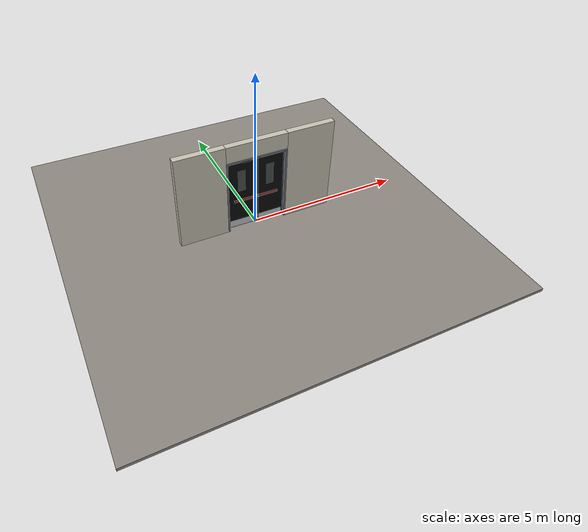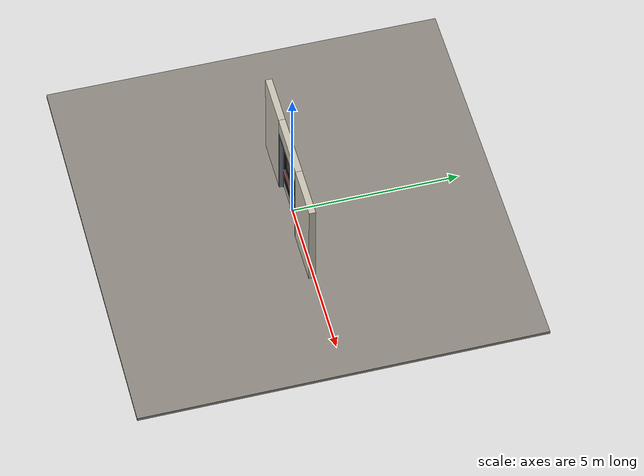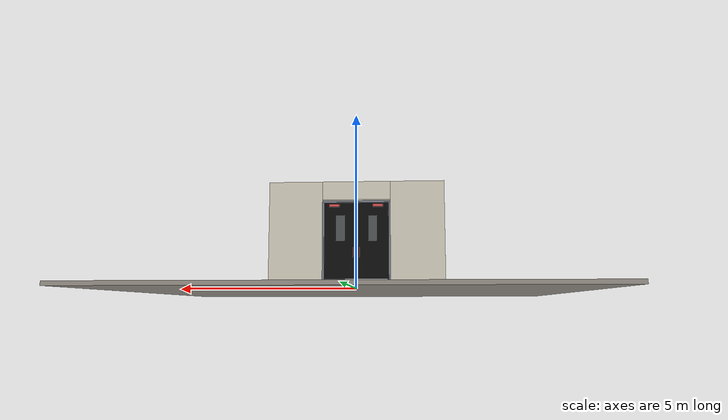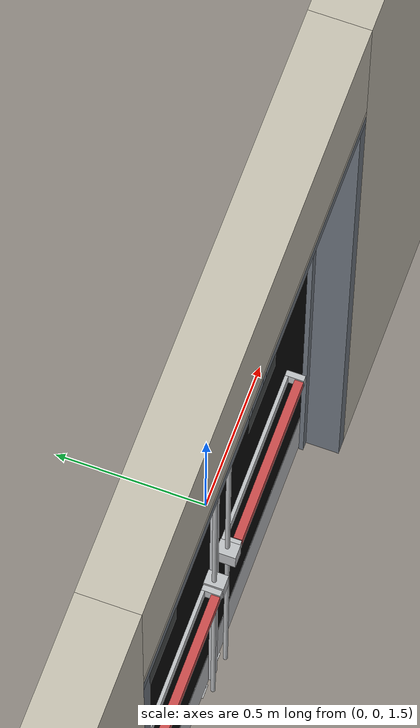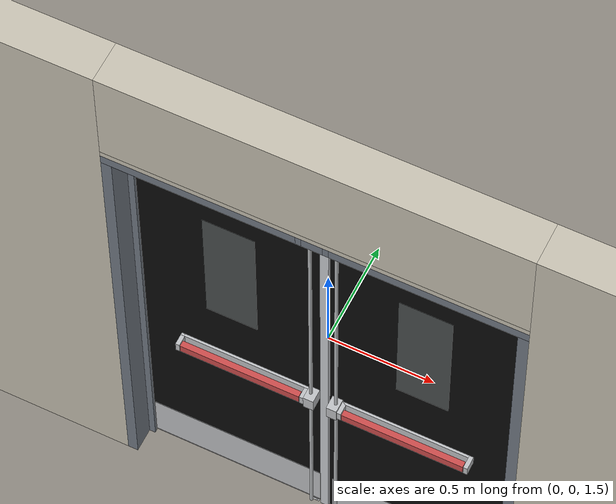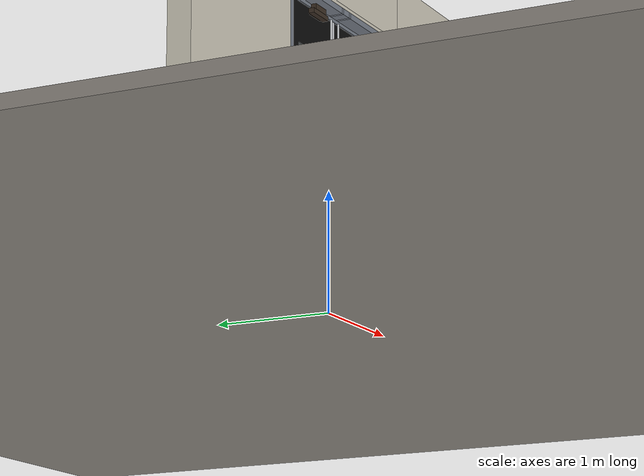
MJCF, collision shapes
<?xml version="1.0" ?>
<mujoco model="db0261_swing_double_full">
  <compiler angle="radian" meshdir="../../hardware" texturedir="../../textures" autolimits="true" inertiafromgeom="false"/>
  <option timestep="0.002" integrator="implicitfast" cone="elliptic" impratio="10" noslip_iterations="3">
    <flag multiccd="enable"/>
  </option>
  <size memory="16M"/>
  <default>
    <geom condim="4" solref="0.005 1" solimp="0.95 0.99 0.001"/>
    <joint solreflimit="0.005 1" solimplimit="0.95 0.99 0.001"/>
    <tendon solreflimit="0.005 1"/>
    <equality solref="0.002 1"/>
  </default>
  <visual>
    <headlight ambient="0.4 0.4 0.4" diffuse="0.7 0.7 0.7" specular="0.2 0.2 0.2"/>
    <quality shadowsize="4096"/>
    <map znear="0.01" zfar="60"/>
  </visual>
  <asset>
    <mesh name="closer_body_fdc4667657" file="closer_body_fdc4667657.obj"/>
    <mesh name="exit_sign_a6449bfa2c" file="exit_sign_a6449bfa2c.obj"/>
    <mesh name="hinge_e22b26c0c1" file="hinge_e22b26c0c1.obj"/>
    <mesh name="hinge_jamb_e1d088f8dc" file="hinge_jamb_e1d088f8dc.obj"/>
    <mesh name="pull_f8d79d6331" file="pull_f8d79d6331.obj"/>
    <mesh name="touchbar_pad_2729a067b4" file="touchbar_pad_2729a067b4.obj"/>
    <material name="mat_floor" rgba="0.55 0.53 0.5 1" specular="0.2" shininess="0.15" reflectance="0"/>
    <material name="mat_wall" rgba="0.78 0.76 0.7 1" specular="0.2" shininess="0.1" reflectance="0"/>
    <material name="mat_leaf_a" rgba="0.04 0.04 0.04 1" specular="0.23" shininess="0.38" reflectance="0.02"/>
    <material name="mat_glass" rgba="0.8 0.85 0.85 0.35" specular="0.2" shininess="0.9" reflectance="0.1"/>
    <material name="mat_hinge" rgba="0.65 0.66 0.68 1" specular="0.74" shininess="0.5" reflectance="0.36"/>
    <material name="mat_op_stainless" rgba="0.75 0.76 0.77 1" specular="0.8" shininess="0.65" reflectance="0.4"/>
    <material name="mat_bolt" rgba="0.75 0.76 0.77 1" specular="0.8" shininess="0.65" reflectance="0.4"/>
    <material name="mat_maglock" rgba="0.22 0.17 0.13 1" specular="0.8" shininess="0.6" reflectance="0.4"/>
    <material name="mat_closer" rgba="0.22 0.17 0.13 1" specular="0.8" shininess="0.6" reflectance="0.4"/>
    <material name="mat_kick" rgba="0.75 0.76 0.77 1" specular="0.8" shininess="0.65" reflectance="0.4"/>
    <material name="mat_exit_sign" rgba="0.85 0.1 0.1 1" specular="0.2" shininess="0.6" reflectance="0"/>
    <material name="mat_sign_bracket" rgba="0.8 0.81 0.83 1" specular="0.8" shininess="0.6" reflectance="0.4"/>
    <material name="mat_leaf_b" rgba="0.04 0.04 0.04 1" specular="0.23" shininess="0.38" reflectance="0.02"/>
    <material name="mat_frame" rgba="0.45 0.48 0.52 1" specular="0.32" shininess="0.6" reflectance="0.08"/>
    <material name="mat_astragal" rgba="0.8 0.81 0.83 1" specular="0.8" shininess="0.6" reflectance="0.4"/>
    <texture name="skybox" type="skybox" builtin="gradient" rgb1="0.6 0.7 0.85" rgb2="0.9 0.92 0.95" width="256" height="256"/>
  </asset>
  <worldbody>
    <light name="sun" pos="1.5 -2.5 4" dir="-0.3 0.5 -0.8" directional="true" diffuse="0.8 0.8 0.8" specular="0.3 0.3 0.3" castshadow="true"/>
    <light name="fill" pos="-1.5 2.5 3" dir="0.3 -0.5 -0.7" directional="true" diffuse="0.35 0.35 0.4" castshadow="false"/>
    <camera name="robot_view" pos="0 -2.980812 2.043887" xyaxes="1 0 0 0 0.26963 0.962964" fovy="52"/>
    <camera name="far_view" pos="0 2.864813 2.043887" xyaxes="-1 0 0 0 -0.26963 0.962964" fovy="52"/>
    <camera name="iso" pos="-2.221337 -2.513162 2.511538" xyaxes="0.741536 -0.670913 0 0.242917 0.268487 0.932151" fovy="46"/>
    <camera name="detail_handle" pos="0.0885 -0.703 1.296" xyaxes="0.97561 0.219512 0 -0.070934 0.315262 0.94635" fovy="38"/>
    <geom name="floor" type="box" size="6 6 0.05" pos="0 0 -0.05" material="mat_floor" group="0" contype="1" conaffinity="1" friction="0.8 0.005 0.0001" density="2400"/>
    <geom name="wall_left" type="box" size="0.76575 0.1 1.5255" pos="-1.73425 -0.058 1.5255" material="mat_wall" group="0" contype="1" conaffinity="1" friction="0.6 0.005 0.0001" density="800"/>
    <geom name="wall_right" type="box" size="0.76575 0.1 1.5255" pos="1.73425 -0.058 1.5255" material="mat_wall" group="0" contype="1" conaffinity="1" friction="0.6 0.005 0.0001" density="800"/>
    <geom name="wall_header" type="box" size="0.9685 0.1 0.26" pos="0 -0.058 2.791" material="mat_wall" group="0" contype="1" conaffinity="1" friction="0.6 0.005 0.0001" density="800"/>
    <geom name="hinge_0_jamb" type="mesh" mesh="hinge_jamb_e1d088f8dc" pos="-0.9155 0.029 0.266" quat="0 1 0 0" material="mat_hinge" group="1" contype="0" conaffinity="0" density="7850"/>
    <geom name="hinge_1_jamb" type="mesh" mesh="hinge_jamb_e1d088f8dc" pos="-0.9155 0.029 0.933" quat="0 1 0 0" material="mat_hinge" group="1" contype="0" conaffinity="0" density="7850"/>
    <geom name="hinge_2_jamb" type="mesh" mesh="hinge_jamb_e1d088f8dc" pos="-0.9155 0.029 1.6" quat="0 1 0 0" material="mat_hinge" group="1" contype="0" conaffinity="0" density="7850"/>
    <geom name="hinge_3_jamb" type="mesh" mesh="hinge_jamb_e1d088f8dc" pos="-0.9155 0.029 2.267" quat="0 1 0 0" material="mat_hinge" group="1" contype="0" conaffinity="0" density="7850"/>
    <geom name="leaf_a_bottom_strike_plate" type="box" size="0.0255 0.0255 0.00075" pos="-0.0615 0 0.00075" material="mat_bolt" group="0" contype="1" conaffinity="1" friction="0.6 0.005 0.0001" density="7850"/>
    <geom name="leaf_a_bottom_strike_p" type="box" size="0.0215 0.004 0.00575" pos="-0.0615 0.0145 0.00725" material="mat_bolt" group="0" contype="1" conaffinity="1" friction="0.6 0.005 0.0001" density="7850"/>
    <geom name="leaf_a_bottom_strike_n" type="box" size="0.0215 0.004 0.00575" pos="-0.0615 -0.0145 0.00725" material="mat_bolt" group="0" contype="1" conaffinity="1" friction="0.6 0.005 0.0001" density="7850"/>
    <geom name="leaf_a_bottom_strike_e" type="box" size="0.004 0.0215 0.00575" pos="-0.047 0 0.00725" material="mat_bolt" group="0" contype="1" conaffinity="1" friction="0.6 0.005 0.0001" density="7850"/>
    <geom name="leaf_a_maglock_body" type="box" size="0.125 0.025 0.02" pos="-0.3015 -0.057 2.386" material="mat_maglock" group="0" contype="1" conaffinity="1" friction="0.6 0.005 0.0001" density="2000"/>
    <geom name="leaf_a_maglock_bracket" type="box" size="0.09 0.025 0.0225" pos="-0.3015 -0.057 2.4285" material="mat_maglock" group="1" contype="0" conaffinity="0" density="7850"/>
    <geom name="exit_sign" type="mesh" mesh="exit_sign_a6449bfa2c" pos="0 -0.15 2.751" material="mat_exit_sign" group="2" contype="0" conaffinity="0" density="500"/>
    <geom name="hinge_0_jamb_2" type="mesh" mesh="hinge_jamb_e1d088f8dc" pos="0.9155 0.029 0.266" quat="0 0 0 1" material="mat_hinge" group="1" contype="0" conaffinity="0" density="7850"/>
    <geom name="hinge_1_jamb_2" type="mesh" mesh="hinge_jamb_e1d088f8dc" pos="0.9155 0.029 0.933" quat="0 0 0 1" material="mat_hinge" group="1" contype="0" conaffinity="0" density="7850"/>
    <geom name="hinge_2_jamb_2" type="mesh" mesh="hinge_jamb_e1d088f8dc" pos="0.9155 0.029 1.6" quat="0 0 0 1" material="mat_hinge" group="1" contype="0" conaffinity="0" density="7850"/>
    <geom name="hinge_3_jamb_2" type="mesh" mesh="hinge_jamb_e1d088f8dc" pos="0.9155 0.029 2.267" quat="0 0 0 1" material="mat_hinge" group="1" contype="0" conaffinity="0" density="7850"/>
    <geom name="leaf_b_bottom_strike_plate" type="box" size="0.0255 0.0255 0.00075" pos="0.0615 0 0.00075" material="mat_bolt" group="0" contype="1" conaffinity="1" friction="0.6 0.005 0.0001" density="7850"/>
    <geom name="leaf_b_bottom_strike_p" type="box" size="0.0215 0.004 0.00575" pos="0.0615 0.0145 0.00725" material="mat_bolt" group="0" contype="1" conaffinity="1" friction="0.6 0.005 0.0001" density="7850"/>
    <geom name="leaf_b_bottom_strike_n" type="box" size="0.0215 0.004 0.00575" pos="0.0615 -0.0145 0.00725" material="mat_bolt" group="0" contype="1" conaffinity="1" friction="0.6 0.005 0.0001" density="7850"/>
    <geom name="leaf_b_bottom_strike_e" type="box" size="0.004 0.0215 0.00575" pos="0.047 0 0.00725" material="mat_bolt" group="0" contype="1" conaffinity="1" friction="0.6 0.005 0.0001" density="7850"/>
    <geom name="jamb_l" type="box" size="0.025 0.1 1.2255" pos="-0.9435 -0.058 1.2255" material="mat_frame" group="0" contype="1" conaffinity="1" friction="0.6 0.005 0.0001" density="300"/>
    <geom name="jamb_r" type="box" size="0.025 0.1 1.2255" pos="0.9435 -0.058 1.2255" material="mat_frame" group="0" contype="1" conaffinity="1" friction="0.6 0.005 0.0001" density="300"/>
    <geom name="jamb_head_pwall_-61_n" type="box" size="0.0135 0.0735 0.025" pos="-0.0615 -0.0845 2.476" material="mat_frame" group="0" contype="1" conaffinity="1" friction="0.6 0.005 0.0001" density="300"/>
    <geom name="jamb_head_pwall_-61_p" type="box" size="0.0135 0.0155 0.025" pos="-0.0615 0.0265 2.476" material="mat_frame" group="0" contype="1" conaffinity="1" friction="0.6 0.005 0.0001" density="300"/>
    <geom name="jamb_head_pback_-61" type="box" size="0.0135 0.011 0.0135" pos="-0.0615 0 2.4875" material="mat_frame" group="0" contype="1" conaffinity="1" friction="0.6 0.005 0.0001" density="300"/>
    <geom name="jamb_head_pwall_61_n" type="box" size="0.0135 0.0735 0.025" pos="0.0615 -0.0845 2.476" material="mat_frame" group="0" contype="1" conaffinity="1" friction="0.6 0.005 0.0001" density="300"/>
    <geom name="jamb_head_pwall_61_p" type="box" size="0.0135 0.0155 0.025" pos="0.0615 0.0265 2.476" material="mat_frame" group="0" contype="1" conaffinity="1" friction="0.6 0.005 0.0001" density="300"/>
    <geom name="jamb_head_pback_61" type="box" size="0.0135 0.011 0.0135" pos="0.0615 0 2.4875" material="mat_frame" group="0" contype="1" conaffinity="1" friction="0.6 0.005 0.0001" density="300"/>
    <geom name="jamb_head_0" type="box" size="0.44675 0.1 0.025" pos="-0.52175 -0.058 2.476" material="mat_frame" group="0" contype="1" conaffinity="1" friction="0.6 0.005 0.0001" density="300"/>
    <geom name="jamb_head_1" type="box" size="0.048 0.1 0.025" pos="0 -0.058 2.476" material="mat_frame" group="0" contype="1" conaffinity="1" friction="0.6 0.005 0.0001" density="300"/>
    <geom name="jamb_head_2" type="box" size="0.44675 0.1 0.025" pos="0.52175 -0.058 2.476" material="mat_frame" group="0" contype="1" conaffinity="1" friction="0.6 0.005 0.0001" density="300"/>
    <geom name="head_stud" type="box" size="0.9685 0.1 0.015" pos="0 -0.058 2.516" material="mat_wall" group="0" contype="1" conaffinity="1" friction="0.6 0.005 0.0001" density="500"/>
    <geom name="stop_l" type="box" size="0.015 0.008 1.2255" pos="-0.9035 -0.0305 1.2255" material="mat_frame" group="0" contype="1" conaffinity="1" friction="0.6 0.005 0.0001" density="300"/>
    <geom name="stop_r" type="box" size="0.015 0.008 1.2255" pos="0.9035 -0.0305 1.2255" material="mat_frame" group="0" contype="1" conaffinity="1" friction="0.6 0.005 0.0001" density="300"/>
    <geom name="stop_head" type="box" size="0.9185 0.008 0.015" pos="0 -0.0305 2.436" material="mat_frame" group="0" contype="1" conaffinity="1" friction="0.6 0.005 0.0001" density="300"/>
    <site name="approach_point" pos="0 -1.5 0" quat="1 0 0 0" size="0.05" rgba="0.2 0.9 0.2 0.5" group="4"/>
    <site name="goal_point" pos="0 1.5 0" quat="1 0 0 0" size="0.05" rgba="0.2 0.9 0.2 0.5" group="4"/>
    <site name="door_plane_center" pos="0 0 1.2255" quat="1 0 0 0" size="0.02" rgba="0.2 0.9 0.2 0.5" group="4"/>
    <site name="approach_point_2" pos="0 -1.5 0" quat="1 0 0 0" size="0.05" rgba="0.2 0.9 0.2 0.5" group="4"/>
    <site name="goal_point_2" pos="0 1.5 0" quat="1 0 0 0" size="0.05" rgba="0.2 0.9 0.2 0.5" group="4"/>
    <site name="door_plane_center_2" pos="0 0 1.2255" quat="1 0 0 0" size="0.02" rgba="0.2 0.9 0.2 0.5" group="4"/>
    <site name="approach_point_3" pos="0 -1.5 0" quat="1 0 0 0" size="0.05" rgba="0.2 0.9 0.2 0.5" group="4"/>
    <site name="goal_point_3" pos="0 1.5 0" quat="1 0 0 0" size="0.05" rgba="0.2 0.9 0.2 0.5" group="4"/>
    <site name="door_plane_center_3" pos="0 0 1.2255" quat="1 0 0 0" size="0.02" rgba="0.2 0.9 0.2 0.5" group="4"/>
    <body name="leaf_a" pos="-0.9185 0 0">
      <inertial pos="0.454516 0.011177 1.366277" mass="56.902373" quat="-0.471715 0.498467 0.510789 0.517795" diaginertia="3.88594674 37.206451716 40.966003854"/>
      <joint name="leaf_a_hinge" type="hinge" axis="0 0 1" pos="0.003 0.029 0" limited="true" range="0 1.745329" solreflimit="0.02 1" damping="12.307281" frictionloss="2.360548" stiffness="15.342537" springref="-1.864099" armature="0.02"/>
      <geom name="leaf_a_slab" type="box" size="0.457 0.022 1.2155" pos="0.46 0 1.2315" material="mat_leaf_a" group="0" contype="1" conaffinity="1" friction="0.4 0.005 0.0001" density="1"/>
      <geom name="leaf_a_glass_0" type="box" size="0.125 0.0228 0.36465" pos="0.46 0 1.7177" material="mat_glass" group="1" contype="0" conaffinity="0" density="1"/>
      <geom name="hinge_0" type="mesh" mesh="hinge_e22b26c0c1" pos="0.003 0.029 0.266" quat="0 1 0 0" material="mat_hinge" group="1" contype="0" conaffinity="0" density="7850"/>
      <geom name="hinge_1" type="mesh" mesh="hinge_e22b26c0c1" pos="0.003 0.029 0.933" quat="0 1 0 0" material="mat_hinge" group="1" contype="0" conaffinity="0" density="7850"/>
      <geom name="hinge_2" type="mesh" mesh="hinge_e22b26c0c1" pos="0.003 0.029 1.6" quat="0 1 0 0" material="mat_hinge" group="1" contype="0" conaffinity="0" density="7850"/>
      <geom name="hinge_3" type="mesh" mesh="hinge_e22b26c0c1" pos="0.003 0.029 2.267" quat="0 1 0 0" material="mat_hinge" group="1" contype="0" conaffinity="0" density="7850"/>
      <geom name="leaf_a_exit_device_rail" type="box" size="0.31705 0.006 0.025" pos="0.51995 -0.028 1.016" material="mat_op_stainless" group="0" contype="1" conaffinity="1" friction="0.6 0.005 0.0001" density="3000"/>
      <geom name="leaf_a_exit_device_rail_end_n" type="box" size="0.01 0.0325 0.025" pos="0.2129 -0.0545 1.016" material="mat_op_stainless" group="0" contype="1" conaffinity="1" friction="0.6 0.005 0.0001" density="3000"/>
      <geom name="leaf_a_exit_device_rail_end_p" type="box" size="0.01 0.0325 0.025" pos="0.827 -0.0545 1.016" material="mat_op_stainless" group="0" contype="1" conaffinity="1" friction="0.6 0.005 0.0001" density="3000"/>
      <geom name="leaf_a_exit_device_case" type="box" size="0.025 0.034125 0.0375" pos="0.862 -0.056125 1.016" material="mat_op_stainless" group="0" contype="1" conaffinity="1" friction="0.6 0.005 0.0001" density="3000"/>
      <geom name="leaf_a_exit_device_rod_top" type="cylinder" size="0.008 0.68175" pos="0.857 -0.052 1.73525" material="mat_op_stainless" group="1" contype="0" conaffinity="0" density="7850"/>
      <geom name="leaf_a_exit_device_rod_bot" type="cylinder" size="0.008 0.46625" pos="0.857 -0.052 0.51225" material="mat_op_stainless" group="1" contype="0" conaffinity="0" density="7850"/>
      <geom name="leaf_a_far_pull_p" type="mesh" mesh="pull_f8d79d6331" pos="0.827 0.022 1.016" quat="-0.707107 0.707107 0 0" material="mat_op_stainless" group="1" contype="0" conaffinity="0" density="3000"/>
      <geom name="leaf_a_far_pull_col_p" type="capsule" size="0.0125 0.13" pos="0.827 0.097 1.016" material="mat_op_stainless" group="3" contype="1" conaffinity="1" rgba="0.8 0.3 0.3 0.25" friction="0.7 0.01 0.0001" density="3000"/>
      <geom name="leaf_a_maglock_armature" type="box" size="0.09 0.005 0.02" pos="0.617 -0.027 2.386" material="mat_maglock" group="1" contype="0" conaffinity="0" density="7800"/>
      <geom name="closer_body" type="mesh" mesh="closer_body_fdc4667657" pos="0.3 0.022 2.351" quat="-0.707107 0.707107 0 0" material="mat_closer" group="1" contype="0" conaffinity="0" density="2000"/>
      <geom name="closer_body_col" type="box" size="0.145 0.05 0.035" pos="0.3 0.072 2.351" material="mat_closer" group="3" contype="1" conaffinity="1" rgba="0.8 0.3 0.3 0.25" friction="0.6 0.005 0.0001" density="2000"/>
      <geom name="kick_plate_n" type="box" size="0.427 0.0008 0.125" pos="0.46 -0.0228 0.151" material="mat_kick" group="2" contype="0" conaffinity="0" density="7900"/>
      <geom name="kick_plate_p" type="box" size="0.427 0.0008 0.125" pos="0.46 0.0228 0.151" material="mat_kick" group="2" contype="0" conaffinity="0" density="7900"/>
      <site name="leaf_a_far_pull_grip_p" pos="0.827 0.097 1.016" quat="1 0 0 0" size="0.012" rgba="0.2 0.9 0.2 0.5" group="4"/>
      <site name="leaf_a_edge_mid" pos="0.917 0 1.2155" quat="1 0 0 0" size="0.02" rgba="0.2 0.9 0.2 0.5" group="4"/>
      <body name="leaf_a_exit_device" pos="0.51995 -0.022 1.016">
        <inertial pos="0 -0.05 0" mass="4.76361" quat="0 0 0.707107 0.707107" diaginertia="0.00116113 0.137653089 0.138099678"/>
        <joint name="leaf_a_exit_device_slide" type="slide" axis="0 1 0" limited="true" range="0 0.016" damping="165.880125" frictionloss="0.5" stiffness="1400" springref="-0.015714" armature="0.15"/>
        <geom name="leaf_a_exit_device_pad" type="mesh" mesh="touchbar_pad_2729a067b4" pos="0 0 0" quat="0.707107 0.707107 0 0" material="mat_op_stainless" group="1" contype="0" conaffinity="0" density="3000"/>
        <geom name="leaf_a_exit_device_pad_col" type="box" size="0.29405 0.015 0.0225" pos="0 -0.05 0" material="mat_op_stainless" group="3" contype="1" conaffinity="1" rgba="0.8 0.3 0.3 0.25" friction="0.8 0.01 0.0001" density="3000"/>
        <site name="leaf_a_exit_device_push" pos="0 -0.065 0" quat="1 0 0 0" size="0.015" rgba="0.2 0.9 0.2 0.5" group="4"/>
      </body>
      <body name="leaf_a_top_latch" pos="0.857 0 2.447">
        <inertial pos="0 0 -0.0155" mass="0.151026" quat="0.707107 0 0.707107 0" diaginertia="0.00000654 0.000053442 0.000053442"/>
        <joint name="leaf_a_top_latch_slide" type="slide" axis="0 0 -1" limited="true" range="0 0.019" damping="2" frictionloss="0.3" stiffness="800" springref="-0.01" armature="0.1"/>
        <geom name="leaf_a_top_latch_capsule" type="capsule" size="0.0095 0.025" pos="0 0 -0.0155" material="mat_bolt" group="0" contype="1" conaffinity="1" friction="0.2 0.005 0.0001" density="8500"/>
      </body>
      <body name="leaf_a_bottom_latch" pos="0.857 0 0.03">
        <inertial pos="0 0 0.012" mass="0.167896" quat="0.707107 0 0.707107 0" diaginertia="0.000007301 0.000072388 0.000072388"/>
        <joint name="leaf_a_bottom_latch_slide" type="slide" axis="0 0 1" limited="true" range="0 0.026" damping="2" frictionloss="0.3" stiffness="800" springref="-0.01" armature="0.1"/>
        <geom name="leaf_a_bottom_latch_capsule" type="capsule" size="0.0095 0.0285" pos="0 0 0.012" material="mat_bolt" group="0" contype="1" conaffinity="1" friction="0.2 0.005 0.0001" density="8500"/>
      </body>
    </body>
    <body name="leaf_b" pos="0.9185 0 0">
      <inertial pos="-0.477012 0.009355 1.351827" mass="57.62045" quat="0.520922 -0.510901 -0.498222 -0.468398" diaginertia="4.331800361 37.095564019 41.303457817"/>
      <joint name="leaf_b_hinge" type="hinge" axis="0 0 -1" pos="-0.003 0.029 0" limited="true" range="0 1.745329" solreflimit="0.02 1" damping="12.307281" frictionloss="2.360548" stiffness="15.342537" springref="-1.864099" armature="0.02"/>
      <geom name="leaf_b_slab" type="box" size="0.457 0.022 1.2155" pos="-0.46 0 1.2315" material="mat_leaf_b" group="0" contype="1" conaffinity="1" friction="0.4 0.005 0.0001" density="1"/>
      <geom name="leaf_b_glass_0" type="box" size="0.125 0.0228 0.36465" pos="-0.46 0 1.7177" material="mat_glass" group="1" contype="0" conaffinity="0" density="1"/>
      <geom name="hinge_0_2" type="mesh" mesh="hinge_e22b26c0c1" pos="-0.003 0.029 0.266" quat="0 0 0 1" material="mat_hinge" group="1" contype="0" conaffinity="0" density="7850"/>
      <geom name="hinge_1_2" type="mesh" mesh="hinge_e22b26c0c1" pos="-0.003 0.029 0.933" quat="0 0 0 1" material="mat_hinge" group="1" contype="0" conaffinity="0" density="7850"/>
      <geom name="hinge_2_2" type="mesh" mesh="hinge_e22b26c0c1" pos="-0.003 0.029 1.6" quat="0 0 0 1" material="mat_hinge" group="1" contype="0" conaffinity="0" density="7850"/>
      <geom name="hinge_3_2" type="mesh" mesh="hinge_e22b26c0c1" pos="-0.003 0.029 2.267" quat="0 0 0 1" material="mat_hinge" group="1" contype="0" conaffinity="0" density="7850"/>
      <geom name="leaf_b_exit_device_rail" type="box" size="0.31705 0.006 0.025" pos="-0.51995 -0.028 1.016" material="mat_op_stainless" group="0" contype="1" conaffinity="1" friction="0.6 0.005 0.0001" density="3000"/>
      <geom name="leaf_b_exit_device_rail_end_n" type="box" size="0.01 0.0325 0.025" pos="-0.827 -0.0545 1.016" material="mat_op_stainless" group="0" contype="1" conaffinity="1" friction="0.6 0.005 0.0001" density="3000"/>
      <geom name="leaf_b_exit_device_rail_end_p" type="box" size="0.01 0.0325 0.025" pos="-0.2129 -0.0545 1.016" material="mat_op_stainless" group="0" contype="1" conaffinity="1" friction="0.6 0.005 0.0001" density="3000"/>
      <geom name="leaf_b_exit_device_case" type="box" size="0.025 0.034125 0.0375" pos="-0.862 -0.056125 1.016" material="mat_op_stainless" group="0" contype="1" conaffinity="1" friction="0.6 0.005 0.0001" density="3000"/>
      <geom name="leaf_b_exit_device_rod_top" type="cylinder" size="0.008 0.68175" pos="-0.857 -0.052 1.73525" material="mat_op_stainless" group="1" contype="0" conaffinity="0" density="7850"/>
      <geom name="leaf_b_exit_device_rod_bot" type="cylinder" size="0.008 0.46625" pos="-0.857 -0.052 0.51225" material="mat_op_stainless" group="1" contype="0" conaffinity="0" density="7850"/>
      <geom name="leaf_b_far_pull_p" type="mesh" mesh="pull_f8d79d6331" pos="-0.827 0.022 1.016" quat="0 0 0.707107 0.707107" material="mat_op_stainless" group="1" contype="0" conaffinity="0" density="3000"/>
      <geom name="leaf_b_far_pull_col_p" type="capsule" size="0.0125 0.13" pos="-0.827 0.097 1.016" material="mat_op_stainless" group="3" contype="1" conaffinity="1" rgba="0.8 0.3 0.3 0.25" friction="0.7 0.01 0.0001" density="3000"/>
      <geom name="closer_body_2" type="mesh" mesh="closer_body_fdc4667657" pos="-0.3 0.022 2.351" quat="0 0 0.707107 0.707107" material="mat_closer" group="1" contype="0" conaffinity="0" density="2000"/>
      <geom name="closer_body_col_2" type="box" size="0.145 0.05 0.035" pos="-0.3 0.072 2.351" material="mat_closer" group="3" contype="1" conaffinity="1" rgba="0.8 0.3 0.3 0.25" friction="0.6 0.005 0.0001" density="2000"/>
      <geom name="kick_plate_n_2" type="box" size="0.427 0.0008 0.125" pos="-0.46 -0.0228 0.151" material="mat_kick" group="2" contype="0" conaffinity="0" density="7900"/>
      <geom name="kick_plate_p_2" type="box" size="0.427 0.0008 0.125" pos="-0.46 0.0228 0.151" material="mat_kick" group="2" contype="0" conaffinity="0" density="7900"/>
      <geom name="astragal" type="box" size="0.02 0.008 1.199" pos="-0.921 -0.03 1.219" material="mat_astragal" group="0" contype="1" conaffinity="1" friction="0.6 0.005 0.0001" density="2700"/>
      <site name="leaf_b_far_pull_grip_p" pos="-0.827 0.097 1.016" quat="1 0 0 0" size="0.012" rgba="0.2 0.9 0.2 0.5" group="4"/>
      <site name="leaf_b_edge_mid" pos="-0.917 0 1.2155" quat="1 0 0 0" size="0.02" rgba="0.2 0.9 0.2 0.5" group="4"/>
      <body name="leaf_b_exit_device" pos="-0.51995 -0.022 1.016">
        <inertial pos="0 -0.05 0" mass="4.76361" quat="0 0 -0.707107 0.707107" diaginertia="0.00116113 0.137653089 0.138099678"/>
        <joint name="leaf_b_exit_device_slide" type="slide" axis="0 1 0" limited="true" range="0 0.016" damping="165.880125" frictionloss="0.5" stiffness="1400" springref="-0.015714" armature="0.15"/>
        <geom name="leaf_b_exit_device_pad" type="mesh" mesh="touchbar_pad_2729a067b4" pos="0 0 0" quat="0 0 -0.707107 0.707107" material="mat_op_stainless" group="1" contype="0" conaffinity="0" density="3000"/>
        <geom name="leaf_b_exit_device_pad_col" type="box" size="0.29405 0.015 0.0225" pos="0 -0.05 0" material="mat_op_stainless" group="3" contype="1" conaffinity="1" rgba="0.8 0.3 0.3 0.25" friction="0.8 0.01 0.0001" density="3000"/>
        <site name="leaf_b_exit_device_push" pos="0 -0.065 0" quat="1 0 0 0" size="0.015" rgba="0.2 0.9 0.2 0.5" group="4"/>
      </body>
      <body name="leaf_b_top_latch" pos="-0.857 0 2.447">
        <inertial pos="0 0 -0.0155" mass="0.151026" quat="0.707107 0 0.707107 0" diaginertia="0.00000654 0.000053442 0.000053442"/>
        <joint name="leaf_b_top_latch_slide" type="slide" axis="0 0 -1" limited="true" range="0 0.019" damping="2" frictionloss="0.3" stiffness="800" springref="-0.01" armature="0.1"/>
        <geom name="leaf_b_top_latch_capsule" type="capsule" size="0.0095 0.025" pos="0 0 -0.0155" material="mat_bolt" group="0" contype="1" conaffinity="1" friction="0.2 0.005 0.0001" density="8500"/>
      </body>
      <body name="leaf_b_bottom_latch" pos="-0.857 0 0.03">
        <inertial pos="0 0 0.012" mass="0.167896" quat="0.707107 0 0.707107 0" diaginertia="0.000007301 0.000072388 0.000072388"/>
        <joint name="leaf_b_bottom_latch_slide" type="slide" axis="0 0 1" limited="true" range="0 0.026" damping="2" frictionloss="0.3" stiffness="800" springref="-0.01" armature="0.1"/>
        <geom name="leaf_b_bottom_latch_capsule" type="capsule" size="0.0095 0.0285" pos="0 0 0.012" material="mat_bolt" group="0" contype="1" conaffinity="1" friction="0.2 0.005 0.0001" density="8500"/>
      </body>
    </body>
  </worldbody>
  <tendon>
    <fixed name="leaf_a_top_latch_coupling" limited="true" range="0 10">
      <joint joint="leaf_a_top_latch_slide" coef="1"/>
      <joint joint="leaf_a_exit_device_slide" coef="-1.142857"/>
    </fixed>
    <fixed name="leaf_a_bottom_latch_coupling" limited="true" range="0 10">
      <joint joint="leaf_a_bottom_latch_slide" coef="1"/>
      <joint joint="leaf_a_exit_device_slide" coef="-1.56391"/>
    </fixed>
    <fixed name="leaf_b_top_latch_coupling" limited="true" range="0 10">
      <joint joint="leaf_b_top_latch_slide" coef="1"/>
      <joint joint="leaf_b_exit_device_slide" coef="-1.142857"/>
    </fixed>
    <fixed name="leaf_b_bottom_latch_coupling" limited="true" range="0 10">
      <joint joint="leaf_b_bottom_latch_slide" coef="1"/>
      <joint joint="leaf_b_exit_device_slide" coef="-1.56391"/>
    </fixed>
  </tendon>
  <equality>
    <weld name="leaf_a_maglock" body1="leaf_a" body2="world" active="true"/>
  </equality>
  <sensor>
    <jointpos name="leaf_a_hinge_pos" joint="leaf_a_hinge"/>
    <jointvel name="leaf_a_hinge_vel" joint="leaf_a_hinge"/>
    <jointpos name="leaf_a_exit_device_slide_pos" joint="leaf_a_exit_device_slide"/>
    <jointvel name="leaf_a_exit_device_slide_vel" joint="leaf_a_exit_device_slide"/>
    <jointpos name="leaf_a_top_latch_slide_pos" joint="leaf_a_top_latch_slide"/>
    <jointvel name="leaf_a_top_latch_slide_vel" joint="leaf_a_top_latch_slide"/>
    <jointpos name="leaf_a_bottom_latch_slide_pos" joint="leaf_a_bottom_latch_slide"/>
    <jointvel name="leaf_a_bottom_latch_slide_vel" joint="leaf_a_bottom_latch_slide"/>
    <jointpos name="leaf_b_hinge_pos" joint="leaf_b_hinge"/>
    <jointvel name="leaf_b_hinge_vel" joint="leaf_b_hinge"/>
    <jointpos name="leaf_b_exit_device_slide_pos" joint="leaf_b_exit_device_slide"/>
    <jointvel name="leaf_b_exit_device_slide_vel" joint="leaf_b_exit_device_slide"/>
    <jointpos name="leaf_b_top_latch_slide_pos" joint="leaf_b_top_latch_slide"/>
    <jointvel name="leaf_b_top_latch_slide_vel" joint="leaf_b_top_latch_slide"/>
    <jointpos name="leaf_b_bottom_latch_slide_pos" joint="leaf_b_bottom_latch_slide"/>
    <jointvel name="leaf_b_bottom_latch_slide_vel" joint="leaf_b_bottom_latch_slide"/>
  </sensor>
</mujoco>
